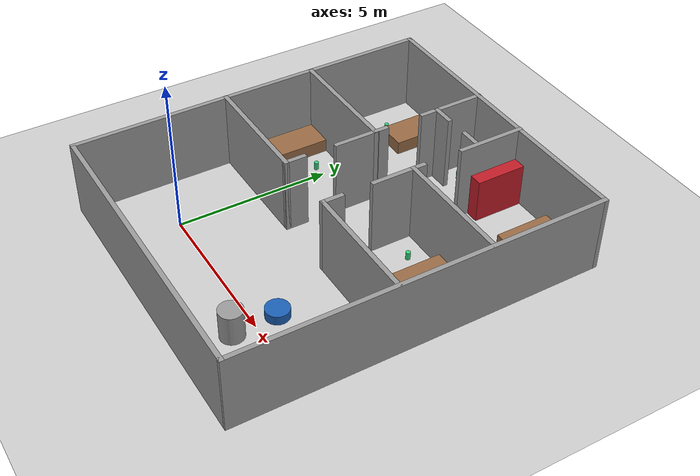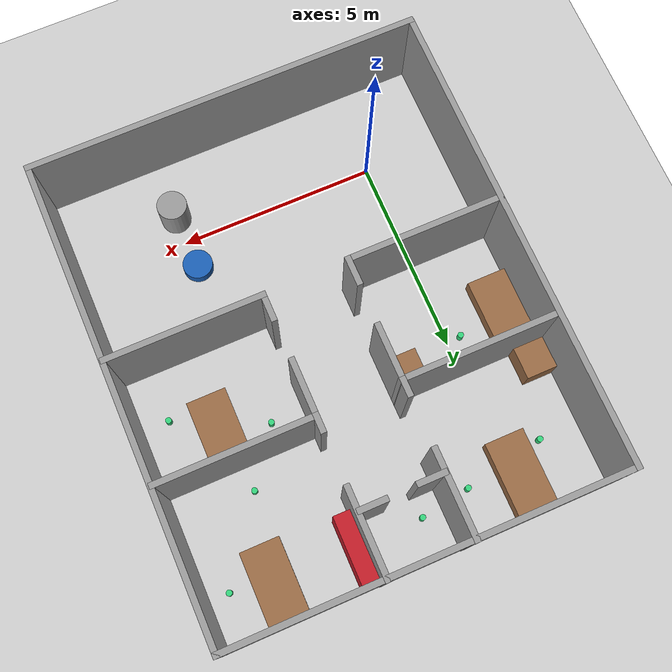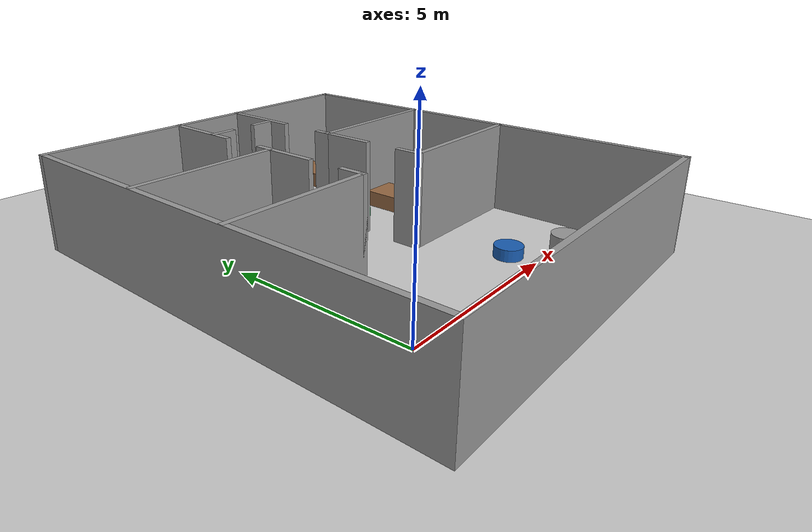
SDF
<sdf version="1.7">
 <world name="default">
  <light name="sun" type="directional">
   <pose>0 0 10 0 -0 0</pose>
   <diffuse>0.8 0.8 0.8 1</diffuse>
   <specular>0.2 0.2 0.2 1</specular>
   <attenuation>
    <range>1000</range>
    <constant>0.9</constant>
    <linear>0.01</linear>
    <quadratic>0.001</quadratic>
   </attenuation>
   <direction>-0.5 0.1 -0.9</direction>
   <spot><inner_angle>0</inner_angle><outer_angle>0</outer_angle><falloff>0</falloff></spot>
  </light>
  <model name="ground_plane">
   <static>1</static>
   <link name="link">
    <collision name="collision">
     <geometry><plane><normal>0 0 1</normal><size>100 100</size></plane></geometry>
     <surface><friction><ode><mu>100</mu><mu2>50</mu2></ode></friction></surface>
    </collision>
    <visual name="visual">
     <cast_shadows>0</cast_shadows>
     <geometry><plane><normal>0 0 1</normal><size>100 100</size></plane></geometry>
     <material>
      <script><uri>file://media/materials/scripts/gazebo.material</uri><name>Gazebo/Grey</name></script>
     </material>
    </visual>
   </link>
  </model>
  <gravity>0 0 -9.8</gravity>
  <magnetic_field>6e-06 2.3e-05 -4.2e-05</magnetic_field>
  <atmosphere type="adiabatic"/>
  <physics type="ode">
   <max_step_size>0.001</max_step_size>
   <real_time_factor>1</real_time_factor>
   <real_time_update_rate>1000</real_time_update_rate>
  </physics>
  <scene><ambient>0.4 0.4 0.4 1</ambient><background>0.7 0.7 0.7 1</background><shadows>1</shadows></scene>
  <audio><device>default</device></audio>
  <spherical_coordinates>
   <surface_model>EARTH_WGS84</surface_model>
   <latitude_deg>0</latitude_deg>
   <longitude_deg>0</longitude_deg>
   <elevation>0</elevation>
   <heading_deg>0</heading_deg>
  </spherical_coordinates>
  <model name="Untitled">
   <pose>4.12572 3.66792 0 0 -0 0.003554</pose>
   <link name="Wall_0">
    <collision name="Wall_0_Collision">
     <geometry><box><size>10 0.15 2.5</size></box></geometry>
     <pose>0 0 1.25 0 -0 0</pose>
    </collision>
    <visual name="Wall_0_Visual">
     <pose>0 0 1.25 0 -0 0</pose>
     <geometry><box><size>10 0.15 2.5</size></box></geometry>
     <material>
      <script><uri>file://media/materials/scripts/gazebo.material</uri><name>Gazebo/Grey</name></script>
      <ambient>1 1 1 1</ambient>
     </material>
     <meta><layer>0</layer></meta>
    </visual>
    <pose>-1.3075 -5.93156 0 0 -0 3.3e-05</pose>
   </link>
   <link name="Wall_14">
    <collision name="Wall_14_Collision">
     <geometry><box><size>4 0.15 2.5</size></box></geometry>
     <pose>0 0 1.25 0 -0 0</pose>
    </collision>
    <visual name="Wall_14_Visual">
     <pose>0 0 1.25 0 -0 0</pose>
     <geometry><box><size>4 0.15 2.5</size></box></geometry>
     <material>
      <script><uri>file://media/materials/scripts/gazebo.material</uri><name>Gazebo/Grey</name></script>
      <ambient>1 1 1 1</ambient>
     </material>
     <meta><layer>0</layer></meta>
    </visual>
    <pose>1.65589 2.13135 0 0 -0 3.14159</pose>
   </link>
   <link name="Wall_17">
    <collision name="Wall_17_Collision">
     <geometry><box><size>4.00005 0.15 2.5</size></box></geometry>
     <pose>0 0 1.25 0 -0 0</pose>
    </collision>
    <visual name="Wall_17_Visual">
     <pose>0 0 1.25 0 -0 0</pose>
     <geometry><box><size>4.00005 0.15 2.5</size></box></geometry>
     <material>
      <script><uri>file://media/materials/scripts/gazebo.material</uri><name>Gazebo/Grey</name></script>
      <ambient>1 1 1 1</ambient>
     </material>
     <meta><layer>0</layer></meta>
    </visual>
    <pose>-4.27584 2.13172 0 0 -0 0</pose>
   </link>
   <link name="Wall_28">
    <collision name="Wall_28_Collision">
     <geometry><box><size>2.25 0.15 2.5</size></box></geometry>
     <pose>0 0 1.25 0 -0 0</pose>
    </collision>
    <visual name="Wall_28_Visual">
     <pose>0 0 1.25 0 -0 0</pose>
     <geometry><box><size>2.25 0.15 2.5</size></box></geometry>
     <material>
      <script><uri>file://media/materials/scripts/gazebo.material</uri><name>Gazebo/Grey</name></script>
      <ambient>1 1 1 1</ambient>
     </material>
     <meta><layer>0</layer></meta>
    </visual>
    <pose>-2.35084 4.88172 0 0 -0 1.5708</pose>
   </link>
   <link name="Wall_31">
    <collision name="Wall_31_Collision">
     <geometry><box><size>2.25 0.15 2.5</size></box></geometry>
     <pose>0 0 1.25 0 -0 0</pose>
    </collision>
    <visual name="Wall_31_Visual">
     <pose>0 0 1.25 0 -0 0</pose>
     <geometry><box><size>2.25 0.15 2.5</size></box></geometry>
     <material>
      <script><uri>file://media/materials/scripts/gazebo.material</uri><name>Gazebo/Grey</name></script>
      <ambient>1 1 1 1</ambient>
     </material>
     <meta><layer>0</layer></meta>
    </visual>
    <pose>-0.269114 4.88135 0 0 -0 1.5708</pose>
   </link>
   <link name="Wall_33">
    <collision name="Wall_33_Collision">
     <geometry><box><size>0.75 0.15 2.5</size></box></geometry>
     <pose>0 0 1.25 0 -0 0</pose>
    </collision>
    <visual name="Wall_33_Visual">
     <pose>0 0 1.25 0 -0 0</pose>
     <geometry><box><size>0.75 0.15 2.5</size></box></geometry>
     <material>
      <script><uri>file://media/materials/scripts/gazebo.material</uri><name>Gazebo/Grey</name></script>
      <ambient>1 1 1 1</ambient>
     </material>
     <meta><layer>0</layer></meta>
    </visual>
    <pose>-2.03024 4.37324 0 0 -0 0</pose>
   </link>
   <link name="Wall_36">
    <collision name="Wall_36_Collision">
     <geometry><box><size>0.75 0.15 2.5</size></box></geometry>
     <pose>0 0 1.25 0 -0 0</pose>
    </collision>
    <visual name="Wall_36_Visual">
     <pose>0 0 1.25 0 -0 0</pose>
     <geometry><box><size>0.75 0.15 2.5</size></box></geometry>
     <material>
      <script><uri>file://media/materials/scripts/gazebo.material</uri><name>Gazebo/Grey</name></script>
      <ambient>1 1 1 1</ambient>
     </material>
     <meta><layer>0</layer></meta>
    </visual>
    <pose>-0.612674 4.39073 0 0 -0 3.14159</pose>
   </link>
   <link name="Wall_4">
    <collision name="Wall_4_Collision">
     <geometry><box><size>12 0.15 2.5</size></box></geometry>
     <pose>0 0 1.25 0 -0 0</pose>
    </collision>
    <visual name="Wall_4_Visual">
     <pose>0 0 1.25 0 -0 0</pose>
     <geometry><box><size>12 0.15 2.5</size></box></geometry>
     <material>
      <script><uri>file://media/materials/scripts/gazebo.material</uri><name>Gazebo/Grey</name></script>
      <ambient>1 1 1 1</ambient>
     </material>
     <meta><layer>0</layer></meta>
    </visual>
    <pose>-6.2325 -0.006559 0 0 -0 1.57077</pose>
   </link>
   <link name="Wall_40">
    <collision name="Wall_40_Collision">
     <geometry><box><size>4 0.15 2.5</size></box></geometry>
     <pose>0 0 1.25 0 -0 0</pose>
    </collision>
    <visual name="Wall_40_Visual">
     <pose>0 0 1.25 0 -0 0</pose>
     <geometry><box><size>4 0.15 2.5</size></box></geometry>
     <material>
      <script><uri>file://media/materials/scripts/gazebo.material</uri><name>Gazebo/Grey</name></script>
      <ambient>1 1 1 1</ambient>
     </material>
     <meta><layer>0</layer></meta>
    </visual>
    <pose>-4.29477 -0.903426 0 0 -0 0</pose>
   </link>
   <link name="Wall_42">
    <collision name="Wall_42_Collision">
     <geometry><box><size>4 0.15 2.5</size></box></geometry>
     <pose>0 0 1.25 0 -0 0</pose>
    </collision>
    <visual name="Wall_42_Visual">
     <pose>0 0 1.25 0 -0 0</pose>
     <geometry><box><size>4 0.15 2.5</size></box></geometry>
     <material>
      <script><uri>file://media/materials/scripts/gazebo.material</uri><name>Gazebo/Grey</name></script>
      <ambient>1 1 1 1</ambient>
     </material>
     <meta><layer>0</layer></meta>
    </visual>
    <pose>1.66772 -0.885502 0 0 -0 3.14159</pose>
   </link>
   <link name="Wall_49">
    <collision name="Wall_49_Collision">
     <geometry><box><size>1.5 0.15 2.5</size></box></geometry>
     <pose>0 0 1.25 0 -0 0</pose>
    </collision>
    <visual name="Wall_49_Visual">
     <pose>0 0 1.25 0 -0 0</pose>
     <geometry><box><size>1.5 0.15 2.5</size></box></geometry>
     <material>
      <script><uri>file://media/materials/scripts/gazebo.material</uri><name>Gazebo/Grey</name></script>
      <ambient>1 1 1 1</ambient>
     </material>
     <meta><layer>0</layer></meta>
    </visual>
    <pose>-2.35084 1.47683 0 0 -0 -1.5708</pose>
   </link>
   <link name="Wall_51">
    <collision name="Wall_51_Collision">
     <geometry><box><size>1.5 0.15 2.5</size></box></geometry>
     <pose>0 0 1.25 0 -0 0</pose>
    </collision>
    <visual name="Wall_51_Visual">
     <pose>0 0 1.25 0 -0 0</pose>
     <geometry><box><size>1.5 0.15 2.5</size></box></geometry>
     <material>
      <script><uri>file://media/materials/scripts/gazebo.material</uri><name>Gazebo/Grey</name></script>
      <ambient>1 1 1 1</ambient>
     </material>
     <meta><layer>0</layer></meta>
    </visual>
    <pose>-0.269114 1.45635 0 0 -0 -1.5708</pose>
   </link>
   <link name="Wall_53">
    <collision name="Wall_53_Collision">
     <geometry><box><size>0.5 0.15 2.5</size></box></geometry>
     <pose>0 0 1.25 0 -0 0</pose>
    </collision>
    <visual name="Wall_53_Visual">
     <pose>0 0 1.25 0 -0 0</pose>
     <geometry><box><size>0.5 0.15 2.5</size></box></geometry>
     <material>
      <script><uri>file://media/materials/scripts/gazebo.material</uri><name>Gazebo/Grey</name></script>
      <ambient>1 1 1 1</ambient>
     </material>
     <meta><layer>0</layer></meta>
    </visual>
    <pose>-2.35084 2.32683 0 0 -0 1.5708</pose>
   </link>
   <link name="Wall_55">
    <collision name="Wall_55_Collision">
     <geometry><box><size>0.5 0.15 2.5</size></box></geometry>
     <pose>0 0 1.25 0 -0 0</pose>
    </collision>
    <visual name="Wall_55_Visual">
     <pose>0 0 1.25 0 -0 0</pose>
     <geometry><box><size>0.5 0.15 2.5</size></box></geometry>
     <material>
      <script><uri>file://media/materials/scripts/gazebo.material</uri><name>Gazebo/Grey</name></script>
      <ambient>1 1 1 1</ambient>
     </material>
     <meta><layer>0</layer></meta>
    </visual>
    <pose>-0.269114 2.30635 0 0 -0 1.5708</pose>
   </link>
   <link name="Wall_57">
    <collision name="Wall_57_Collision">
     <geometry><box><size>0.75 0.15 2.5</size></box></geometry>
     <pose>0 0 1.25 0 -0 0</pose>
    </collision>
    <visual name="Wall_57_Visual">
     <pose>0 0 1.25 0 -0 0</pose>
     <geometry><box><size>0.75 0.15 2.5</size></box></geometry>
     <material>
      <script><uri>file://media/materials/scripts/gazebo.material</uri><name>Gazebo/Grey</name></script>
      <ambient>1 1 1 1</ambient>
     </material>
     <meta><layer>0</layer></meta>
    </visual>
    <pose>-2.36977 -0.603426 0 0 -0 1.5708</pose>
   </link>
   <link name="Wall_59">
    <collision name="Wall_59_Collision">
     <geometry><box><size>0.75 0.15 2.5</size></box></geometry>
     <pose>0 0 1.25 0 -0 0</pose>
    </collision>
    <visual name="Wall_59_Visual">
     <pose>0 0 1.25 0 -0 0</pose>
     <geometry><box><size>0.75 0.15 2.5</size></box></geometry>
     <material>
      <script><uri>file://media/materials/scripts/gazebo.material</uri><name>Gazebo/Grey</name></script>
      <ambient>1 1 1 1</ambient>
     </material>
     <meta><layer>0</layer></meta>
    </visual>
    <pose>-0.257281 -0.585502 0 0 -0 1.5708</pose>
   </link>
   <link name="Wall_6">
    <collision name="Wall_6_Collision">
     <geometry><box><size>12 0.15 2.5</size></box></geometry>
     <pose>0 0 1.25 0 -0 0</pose>
    </collision>
    <visual name="Wall_6_Visual">
     <pose>0 0 1.25 0 -0 0</pose>
     <geometry><box><size>12 0.15 2.5</size></box></geometry>
     <material>
      <script><uri>file://media/materials/scripts/gazebo.material</uri><name>Gazebo/Grey</name></script>
      <ambient>1 1 1 1</ambient>
     </material>
     <meta><layer>0</layer></meta>
    </visual>
    <pose>3.61766 -0.006398 0 0 -0 1.5708</pose>
   </link>
   <link name="Wall_9">
    <collision name="Wall_9_Collision">
     <geometry><box><size>10.0003 0.15 2.5</size></box></geometry>
     <pose>0 0 1.25 0 -0 0</pose>
    </collision>
    <visual name="Wall_9_Visual">
     <pose>0 0 1.25 0 -0 0</pose>
     <geometry><box><size>10.0003 0.15 2.5</size></box></geometry>
     <material>
      <script><uri>file://media/materials/scripts/gazebo.material</uri><name>Gazebo/Grey</name></script>
      <ambient>1 1 1 1</ambient>
     </material>
     <meta><layer>0</layer></meta>
    </visual>
    <pose>-1.30734 5.9186 0 0 -0 0</pose>
   </link>
   <static>1</static>
  </model>
  <model name="unit_cylinder">
   <pose>4.96851 -0.700253 0.491747 0 -0 0</pose>
   <link name="link">
    <inertial>
     <mass>1</mass>
     <inertia><ixx>0.145833</ixx><ixy>0</ixy><ixz>0</ixz><iyy>0.145833</iyy><iyz>0</iyz><izz>0.125</izz></inertia>
    </inertial>
    <collision name="collision">
     <geometry><cylinder><radius>0.373748</radius><length>0.983494</length></cylinder></geometry>
    </collision>
    <visual name="visual">
     <geometry><cylinder><radius>0.373748</radius><length>0.983494</length></cylinder></geometry>
     <material>
      <script><name>Gazebo/Grey</name><uri>file://media/materials/scripts/gazebo.material</uri></script>
     </material>
    </visual>
   </link>
  </model>
  <model name="lv_lajitong">
   <link name="link">
    <inertial>
     <mass>1</mass>
     <inertia><ixx>0.145833</ixx><ixy>0</ixy><ixz>0</ixz><iyy>0.145833</iyy><iyz>0</iyz><izz>0.125</izz></inertia>
    </inertial>
    <visual name="visual">
     <geometry><cylinder><radius>0.0738659</radius><length>0.256539</length></cylinder></geometry>
     <material>
      <script><name>Gazebo/Grey</name><uri>file://media/materials/scripts/gazebo.material</uri></script>
      <shader type="pixel"><normal_map>__default__</normal_map></shader>
      <ambient>0.2 0.82 0.478 1</ambient>
      <diffuse>0.7 0.7 0.7 1</diffuse>
      <specular>0.01 0.01 0.01 1</specular>
      <emissive>0 0 0 1</emissive>
     </material>
    </visual>
    <collision name="collision">
     <geometry><cylinder><radius>0.073866</radius><length>0.256539</length></cylinder></geometry>
     <surface>
      <friction>
       <ode><mu>1</mu><mu2>1</mu2><fdir1>0 0 0</fdir1><slip1>0</slip1><slip2>0</slip2></ode>
       <torsional>
        <coefficient>1</coefficient>
        <patch_radius>0</patch_radius>
        <surface_radius>0</surface_radius>
        <use_patch_radius>1</use_patch_radius>
        <ode><slip>0</slip></ode>
       </torsional>
      </friction>
      <bounce><restitution_coefficient>0</restitution_coefficient><threshold>1e+06</threshold></bounce>
      <contact>
       <collide_without_contact>0</collide_without_contact>
       <collide_without_contact_bitmask>1</collide_without_contact_bitmask>
       <collide_bitmask>1</collide_bitmask>
       <ode>
        <soft_cfm>0</soft_cfm>
        <soft_erp>0.2</soft_erp>
        <kp>1e+13</kp>
        <kd>1</kd>
        <max_vel>0.01</max_vel>
        <min_depth>0</min_depth>
       </ode>
       <bullet>
        <split_impulse>1</split_impulse>
        <split_impulse_penetration_threshold>-0.01</split_impulse_penetration_threshold>
        <soft_cfm>0</soft_cfm>
        <soft_erp>0.2</soft_erp>
        <kp>1e+13</kp>
        <kd>1</kd>
       </bullet>
      </contact>
     </surface>
    </collision>
   </link>
   <static>0</static>
   <pose>4.74781 5.13418 0.128269 0 -0 0</pose>
  </model>
  <model name="lv_lajitong_clone">
   <link name="link">
    <inertial>
     <mass>1</mass>
     <inertia><ixx>0.145833</ixx><ixy>0</ixy><ixz>0</ixz><iyy>0.145833</iyy><iyz>0</iyz><izz>0.125</izz></inertia>
    </inertial>
    <visual name="visual">
     <geometry><cylinder><radius>0.0738659</radius><length>0.256539</length></cylinder></geometry>
     <material>
      <script><name>Gazebo/Grey</name><uri>file://media/materials/scripts/gazebo.material</uri></script>
      <shader type="pixel"><normal_map>__default__</normal_map></shader>
      <ambient>0.2 0.82 0.478 1</ambient>
      <diffuse>0.7 0.7 0.7 1</diffuse>
      <specular>0.01 0.01 0.01 1</specular>
      <emissive>0 0 0 1</emissive>
     </material>
    </visual>
    <collision name="collision">
     <geometry><cylinder><radius>0.073866</radius><length>0.256539</length></cylinder></geometry>
     <surface>
      <friction>
       <ode><mu>1</mu><mu2>1</mu2><fdir1>0 0 0</fdir1><slip1>0</slip1><slip2>0</slip2></ode>
       <torsional>
        <coefficient>1</coefficient>
        <patch_radius>0</patch_radius>
        <surface_radius>0</surface_radius>
        <use_patch_radius>1</use_patch_radius>
        <ode><slip>0</slip></ode>
       </torsional>
      </friction>
      <bounce><restitution_coefficient>0</restitution_coefficient><threshold>1e+06</threshold></bounce>
      <contact>
       <collide_without_contact>0</collide_without_contact>
       <collide_without_contact_bitmask>1</collide_without_contact_bitmask>
       <collide_bitmask>1</collide_bitmask>
       <ode>
        <soft_cfm>0</soft_cfm>
        <soft_erp>0.2</soft_erp>
        <kp>1e+13</kp>
        <kd>1</kd>
        <max_vel>0.01</max_vel>
        <min_depth>0</min_depth>
       </ode>
       <bullet>
        <split_impulse>1</split_impulse>
        <split_impulse_penetration_threshold>-0.01</split_impulse_penetration_threshold>
        <soft_cfm>0</soft_cfm>
        <soft_erp>0.2</soft_erp>
        <kp>1e+13</kp>
        <kd>1</kd>
       </bullet>
      </contact>
     </surface>
    </collision>
   </link>
   <static>0</static>
   <pose>-0.351928 4.95421 0.128269 0 -0 0</pose>
  </model>
  <model name="lv_lajitong_clone_0">
   <link name="link">
    <inertial>
     <mass>1</mass>
     <inertia><ixx>0.145833</ixx><ixy>0</ixy><ixz>0</ixz><iyy>0.145833</iyy><iyz>0</iyz><izz>0.125</izz></inertia>
    </inertial>
    <visual name="visual">
     <geometry><cylinder><radius>0.0738659</radius><length>0.256539</length></cylinder></geometry>
     <material>
      <script><name>Gazebo/Grey</name><uri>file://media/materials/scripts/gazebo.material</uri></script>
      <shader type="pixel"><normal_map>__default__</normal_map></shader>
      <ambient>0.2 0.82 0.478 1</ambient>
      <diffuse>0.7 0.7 0.7 1</diffuse>
      <specular>0.01 0.01 0.01 1</specular>
      <emissive>0 0 0 1</emissive>
     </material>
    </visual>
    <collision name="collision">
     <geometry><cylinder><radius>0.073866</radius><length>0.256539</length></cylinder></geometry>
     <surface>
      <friction>
       <ode><mu>1</mu><mu2>1</mu2><fdir1>0 0 0</fdir1><slip1>0</slip1><slip2>0</slip2></ode>
       <torsional>
        <coefficient>1</coefficient>
        <patch_radius>0</patch_radius>
        <surface_radius>0</surface_radius>
        <use_patch_radius>1</use_patch_radius>
        <ode><slip>0</slip></ode>
       </torsional>
      </friction>
      <bounce><restitution_coefficient>0</restitution_coefficient><threshold>1e+06</threshold></bounce>
      <contact>
       <collide_without_contact>0</collide_without_contact>
       <collide_without_contact_bitmask>1</collide_without_contact_bitmask>
       <collide_bitmask>1</collide_bitmask>
       <ode>
        <soft_cfm>0</soft_cfm>
        <soft_erp>0.2</soft_erp>
        <kp>1e+13</kp>
        <kd>1</kd>
        <max_vel>0.01</max_vel>
        <min_depth>0</min_depth>
       </ode>
       <bullet>
        <split_impulse>1</split_impulse>
        <split_impulse_penetration_threshold>-0.01</split_impulse_penetration_threshold>
        <soft_cfm>0</soft_cfm>
        <soft_erp>0.2</soft_erp>
        <kp>1e+13</kp>
        <kd>1</kd>
       </bullet>
      </contact>
     </surface>
    </collision>
   </link>
   <static>0</static>
   <pose>7.00367 4.12908 0.128269 0 -0 0</pose>
  </model>
  <model name="lan_canzhaowu1">
   <link name="link">
    <inertial>
     <mass>1</mass>
     <inertia><ixx>0.145833</ixx><ixy>0</ixy><ixz>0</ixz><iyy>0.145833</iyy><iyz>0</iyz><izz>0.125</izz></inertia>
    </inertial>
    <visual name="visual">
     <geometry><cylinder><radius>0.373748</radius><length>0.308137</length></cylinder></geometry>
     <material>
      <script><name>Gazebo/Grey</name><uri>file://media/materials/scripts/gazebo.material</uri></script>
      <shader type="pixel"><normal_map>__default__</normal_map></shader>
      <ambient>0.102 0.373 0.706 1</ambient>
      <diffuse>0.7 0.7 0.7 1</diffuse>
      <specular>0.01 0.01 0.01 1</specular>
      <emissive>0 0 0 1</emissive>
     </material>
    </visual>
    <collision name="collision">
     <geometry><cylinder><radius>0.373748</radius><length>0.308137</length></cylinder></geometry>
     <surface>
      <friction>
       <ode><mu>1</mu><mu2>1</mu2><fdir1>0 0 0</fdir1><slip1>0</slip1><slip2>0</slip2></ode>
       <torsional>
        <coefficient>1</coefficient>
        <patch_radius>0</patch_radius>
        <surface_radius>0</surface_radius>
        <use_patch_radius>1</use_patch_radius>
        <ode><slip>0</slip></ode>
       </torsional>
      </friction>
      <bounce><restitution_coefficient>0</restitution_coefficient><threshold>1e+06</threshold></bounce>
      <contact>
       <collide_without_contact>0</collide_without_contact>
       <collide_without_contact_bitmask>1</collide_without_contact_bitmask>
       <collide_bitmask>1</collide_bitmask>
       <ode>
        <soft_cfm>0</soft_cfm>
        <soft_erp>0.2</soft_erp>
        <kp>1e+13</kp>
        <kd>1</kd>
        <max_vel>0.01</max_vel>
        <min_depth>0</min_depth>
       </ode>
       <bullet>
        <split_impulse>1</split_impulse>
        <split_impulse_penetration_threshold>-0.01</split_impulse_penetration_threshold>
        <soft_cfm>0</soft_cfm>
        <soft_erp>0.2</soft_erp>
        <kp>1e+13</kp>
        <kd>1</kd>
       </bullet>
      </contact>
     </surface>
    </collision>
   </link>
   <static>0</static>
   <pose>4.91793 0.727272 0.154068 0 -0 0</pose>
  </model>
  <model name="zong_chuang">
   <link name="link">
    <inertial>
     <mass>1</mass>
     <inertia>
      <ixx>0.166667</ixx>
      <ixy>0</ixy>
      <ixz>0</ixz>
      <iyy>0.166667</iyy>
      <iyz>0</iyz>
      <izz>0.166667</izz>
     </inertia>
    </inertial>
    <visual name="visual">
     <geometry><box><size>1 1.83631 0.441286</size></box></geometry>
     <material>
      <script><name>Gazebo/Grey</name><uri>file://media/materials/scripts/gazebo.material</uri></script>
      <shader type="pixel"><normal_map>__default__</normal_map></shader>
      <ambient>0.596 0.416 0.267 1</ambient>
      <diffuse>0.7 0.7 0.7 1</diffuse>
      <specular>0.01 0.01 0.01 1</specular>
      <emissive>0 0 0 1</emissive>
     </material>
    </visual>
    <collision name="collision">
     <geometry><box><size>1 1.83631 0.441286</size></box></geometry>
     <surface>
      <friction>
       <ode><mu>1</mu><mu2>1</mu2><fdir1>0 0 0</fdir1><slip1>0</slip1><slip2>0</slip2></ode>
       <torsional>
        <coefficient>1</coefficient>
        <patch_radius>0</patch_radius>
        <surface_radius>0</surface_radius>
        <use_patch_radius>1</use_patch_radius>
        <ode><slip>0</slip></ode>
       </torsional>
      </friction>
      <bounce><restitution_coefficient>0</restitution_coefficient><threshold>1e+06</threshold></bounce>
      <contact>
       <collide_without_contact>0</collide_without_contact>
       <collide_without_contact_bitmask>1</collide_without_contact_bitmask>
       <collide_bitmask>1</collide_bitmask>
       <ode>
        <soft_cfm>0</soft_cfm>
        <soft_erp>0.2</soft_erp>
        <kp>1e+13</kp>
        <kd>1</kd>
        <max_vel>0.01</max_vel>
        <min_depth>0</min_depth>
       </ode>
       <bullet>
        <split_impulse>1</split_impulse>
        <split_impulse_penetration_threshold>-0.01</split_impulse_penetration_threshold>
        <soft_cfm>0</soft_cfm>
        <soft_erp>0.2</soft_erp>
        <kp>1e+13</kp>
        <kd>1</kd>
       </bullet>
      </contact>
     </surface>
    </collision>
   </link>
   <static>0</static>
   <pose>-1.52545 4.7864 0.220643 0 -0 0.003551</pose>
  </model>
  <model name="zong_chuang_clone">
   <link name="link">
    <inertial>
     <mass>1</mass>
     <inertia>
      <ixx>0.166667</ixx>
      <ixy>0</ixy>
      <ixz>0</ixz>
      <iyy>0.166667</iyy>
      <iyz>0</iyz>
      <izz>0.166667</izz>
     </inertia>
    </inertial>
    <visual name="visual">
     <geometry><box><size>1 1.83631 0.441286</size></box></geometry>
     <material>
      <script><name>Gazebo/Grey</name><uri>file://media/materials/scripts/gazebo.material</uri></script>
      <shader type="pixel"><normal_map>__default__</normal_map></shader>
      <ambient>0.596 0.416 0.267 1</ambient>
      <diffuse>0.7 0.7 0.7 1</diffuse>
      <specular>0.01 0.01 0.01 1</specular>
      <emissive>0 0 0 1</emissive>
     </material>
    </visual>
    <collision name="collision">
     <geometry><box><size>1 1.83631 0.441286</size></box></geometry>
     <surface>
      <friction>
       <ode><mu>1</mu><mu2>1</mu2><fdir1>0 0 0</fdir1><slip1>0</slip1><slip2>0</slip2></ode>
       <torsional>
        <coefficient>1</coefficient>
        <patch_radius>0</patch_radius>
        <surface_radius>0</surface_radius>
        <use_patch_radius>1</use_patch_radius>
        <ode><slip>0</slip></ode>
       </torsional>
      </friction>
      <bounce><restitution_coefficient>0</restitution_coefficient><threshold>1e+06</threshold></bounce>
      <contact>
       <collide_without_contact>0</collide_without_contact>
       <collide_without_contact_bitmask>1</collide_without_contact_bitmask>
       <collide_bitmask>1</collide_bitmask>
       <ode>
        <soft_cfm>0</soft_cfm>
        <soft_erp>0.2</soft_erp>
        <kp>1e+13</kp>
        <kd>1</kd>
        <max_vel>0.01</max_vel>
        <min_depth>0</min_depth>
       </ode>
       <bullet>
        <split_impulse>1</split_impulse>
        <split_impulse_penetration_threshold>-0.01</split_impulse_penetration_threshold>
        <soft_cfm>0</soft_cfm>
        <soft_erp>0.2</soft_erp>
        <kp>1e+13</kp>
        <kd>1</kd>
       </bullet>
      </contact>
     </surface>
    </collision>
   </link>
   <static>0</static>
   <pose>5.95631 4.87378 0.220643 0 -0 0.003551</pose>
  </model>
  <model name="zhuozi">
   <link name="link">
    <inertial>
     <mass>1</mass>
     <inertia>
      <ixx>0.166667</ixx>
      <ixy>0</ixy>
      <ixz>0</ixz>
      <iyy>0.166667</iyy>
      <iyz>0</iyz>
      <izz>0.166667</izz>
     </inertia>
    </inertial>
    <visual name="visual">
     <geometry><box><size>0.774311 0.79644 0.712189</size></box></geometry>
     <material>
      <script><name>Gazebo/Grey</name><uri>file://media/materials/scripts/gazebo.material</uri></script>
      <shader type="pixel"><normal_map>__default__</normal_map></shader>
      <ambient>0.596 0.416 0.267 1</ambient>
      <diffuse>0.7 0.7 0.7 1</diffuse>
      <specular>0.01 0.01 0.01 1</specular>
      <emissive>0 0 0 1</emissive>
     </material>
    </visual>
    <collision name="collision">
     <geometry><box><size>0.774311 0.79644 0.712189</size></box></geometry>
     <surface>
      <friction>
       <ode><mu>1</mu><mu2>1</mu2><fdir1>0 0 0</fdir1><slip1>0</slip1><slip2>0</slip2></ode>
       <torsional>
        <coefficient>1</coefficient>
        <patch_radius>0</patch_radius>
        <surface_radius>0</surface_radius>
        <use_patch_radius>1</use_patch_radius>
        <ode><slip>0</slip></ode>
       </torsional>
      </friction>
      <bounce><restitution_coefficient>0</restitution_coefficient><threshold>1e+06</threshold></bounce>
      <contact>
       <collide_without_contact>0</collide_without_contact>
       <collide_without_contact_bitmask>1</collide_without_contact_bitmask>
       <collide_bitmask>1</collide_bitmask>
       <ode>
        <soft_cfm>0</soft_cfm>
        <soft_erp>0.2</soft_erp>
        <kp>1e+13</kp>
        <kd>1</kd>
        <max_vel>0.01</max_vel>
        <min_depth>0</min_depth>
       </ode>
       <bullet>
        <split_impulse>1</split_impulse>
        <split_impulse_penetration_threshold>-0.01</split_impulse_penetration_threshold>
        <soft_cfm>0</soft_cfm>
        <soft_erp>0.2</soft_erp>
        <kp>1e+13</kp>
        <kd>1</kd>
       </bullet>
      </contact>
     </surface>
    </collision>
   </link>
   <static>0</static>
   <pose>1.29217 5.30178 0.356095 0 -0 0.003551</pose>
  </model>
  <model name="lv_lajitong_clone_clone">
   <link name="link">
    <inertial>
     <mass>1</mass>
     <inertia><ixx>0.145833</ixx><ixy>0</ixy><ixz>0</ixz><iyy>0.145833</iyy><iyz>0</iyz><izz>0.125</izz></inertia>
    </inertial>
    <visual name="visual">
     <geometry><cylinder><radius>0.0738659</radius><length>0.256539</length></cylinder></geometry>
     <material>
      <script><name>Gazebo/Grey</name><uri>file://media/materials/scripts/gazebo.material</uri></script>
      <shader type="pixel"><normal_map>__default__</normal_map></shader>
      <ambient>0.2 0.82 0.478 1</ambient>
      <diffuse>0.7 0.7 0.7 1</diffuse>
      <specular>0.01 0.01 0.01 1</specular>
      <emissive>0 0 0 1</emissive>
     </material>
    </visual>
    <collision name="collision">
     <geometry><cylinder><radius>0.073866</radius><length>0.256539</length></cylinder></geometry>
     <surface>
      <friction>
       <ode><mu>1</mu><mu2>1</mu2><fdir1>0 0 0</fdir1><slip1>0</slip1><slip2>0</slip2></ode>
       <torsional>
        <coefficient>1</coefficient>
        <patch_radius>0</patch_radius>
        <surface_radius>0</surface_radius>
        <use_patch_radius>1</use_patch_radius>
        <ode><slip>0</slip></ode>
       </torsional>
      </friction>
      <bounce><restitution_coefficient>0</restitution_coefficient><threshold>1e+06</threshold></bounce>
      <contact>
       <collide_without_contact>0</collide_without_contact>
       <collide_without_contact_bitmask>1</collide_without_contact_bitmask>
       <collide_bitmask>1</collide_bitmask>
       <ode>
        <soft_cfm>0</soft_cfm>
        <soft_erp>0.2</soft_erp>
        <kp>1e+13</kp>
        <kd>1</kd>
        <max_vel>0.01</max_vel>
        <min_depth>0</min_depth>
       </ode>
       <bullet>
        <split_impulse>1</split_impulse>
        <split_impulse_penetration_threshold>-0.01</split_impulse_penetration_threshold>
        <soft_cfm>0</soft_cfm>
        <soft_erp>0.2</soft_erp>
        <kp>1e+13</kp>
        <kd>1</kd>
       </bullet>
      </contact>
     </surface>
    </collision>
   </link>
   <static>0</static>
   <pose>2.34177 8.61743 0.128269 0 -0 0</pose>
  </model>
  <model name="lv_lajitong_clone_clone_0">
   <link name="link">
    <inertial>
     <mass>1</mass>
     <inertia><ixx>0.145833</ixx><ixy>0</ixy><ixz>0</ixz><iyy>0.145833</iyy><iyz>0</iyz><izz>0.125</izz></inertia>
    </inertial>
    <visual name="visual">
     <geometry><cylinder><radius>0.0738659</radius><length>0.256539</length></cylinder></geometry>
     <material>
      <script><name>Gazebo/Grey</name><uri>file://media/materials/scripts/gazebo.material</uri></script>
      <shader type="pixel"><normal_map>__default__</normal_map></shader>
      <ambient>0.2 0.82 0.478 1</ambient>
      <diffuse>0.7 0.7 0.7 1</diffuse>
      <specular>0.01 0.01 0.01 1</specular>
      <emissive>0 0 0 1</emissive>
     </material>
    </visual>
    <collision name="collision">
     <geometry><cylinder><radius>0.073866</radius><length>0.256539</length></cylinder></geometry>
     <surface>
      <friction>
       <ode><mu>1</mu><mu2>1</mu2><fdir1>0 0 0</fdir1><slip1>0</slip1><slip2>0</slip2></ode>
       <torsional>
        <coefficient>1</coefficient>
        <patch_radius>0</patch_radius>
        <surface_radius>0</surface_radius>
        <use_patch_radius>1</use_patch_radius>
        <ode><slip>0</slip></ode>
       </torsional>
      </friction>
      <bounce><restitution_coefficient>0</restitution_coefficient><threshold>1e+06</threshold></bounce>
      <contact>
       <collide_without_contact>0</collide_without_contact>
       <collide_without_contact_bitmask>1</collide_without_contact_bitmask>
       <collide_bitmask>1</collide_bitmask>
       <ode>
        <soft_cfm>0</soft_cfm>
        <soft_erp>0.2</soft_erp>
        <kp>1e+13</kp>
        <kd>1</kd>
        <max_vel>0.01</max_vel>
        <min_depth>0</min_depth>
       </ode>
       <bullet>
        <split_impulse>1</split_impulse>
        <split_impulse_penetration_threshold>-0.01</split_impulse_penetration_threshold>
        <soft_cfm>0</soft_cfm>
        <soft_erp>0.2</soft_erp>
        <kp>1e+13</kp>
        <kd>1</kd>
       </bullet>
      </contact>
     </surface>
    </collision>
   </link>
   <static>0</static>
   <pose>-1.0069 8.02891 0.128269 0 -0 0</pose>
  </model>
  <model name="lv_lajitong_clone_clone_1">
   <link name="link">
    <inertial>
     <mass>1</mass>
     <inertia><ixx>0.145833</ixx><ixy>0</ixy><ixz>0</ixz><iyy>0.145833</iyy><iyz>0</iyz><izz>0.125</izz></inertia>
    </inertial>
    <visual name="visual">
     <geometry><cylinder><radius>0.0738659</radius><length>0.256539</length></cylinder></geometry>
     <material>
      <script><name>Gazebo/Grey</name><uri>file://media/materials/scripts/gazebo.material</uri></script>
      <shader type="pixel"><normal_map>__default__</normal_map></shader>
      <ambient>0.2 0.82 0.478 1</ambient>
      <diffuse>0.7 0.7 0.7 1</diffuse>
      <specular>0.01 0.01 0.01 1</specular>
      <emissive>0 0 0 1</emissive>
     </material>
    </visual>
    <collision name="collision">
     <geometry><cylinder><radius>0.073866</radius><length>0.256539</length></cylinder></geometry>
     <surface>
      <friction>
       <ode><mu>1</mu><mu2>1</mu2><fdir1>0 0 0</fdir1><slip1>0</slip1><slip2>0</slip2></ode>
       <torsional>
        <coefficient>1</coefficient>
        <patch_radius>0</patch_radius>
        <surface_radius>0</surface_radius>
        <use_patch_radius>1</use_patch_radius>
        <ode><slip>0</slip></ode>
       </torsional>
      </friction>
      <bounce><restitution_coefficient>0</restitution_coefficient><threshold>1e+06</threshold></bounce>
      <contact>
       <collide_without_contact>0</collide_without_contact>
       <collide_without_contact_bitmask>1</collide_without_contact_bitmask>
       <collide_bitmask>1</collide_bitmask>
       <ode>
        <soft_cfm>0</soft_cfm>
        <soft_erp>0.2</soft_erp>
        <kp>1e+13</kp>
        <kd>1</kd>
        <max_vel>0.01</max_vel>
        <min_depth>0</min_depth>
       </ode>
       <bullet>
        <split_impulse>1</split_impulse>
        <split_impulse_penetration_threshold>-0.01</split_impulse_penetration_threshold>
        <soft_cfm>0</soft_cfm>
        <soft_erp>0.2</soft_erp>
        <kp>1e+13</kp>
        <kd>1</kd>
       </bullet>
      </contact>
     </surface>
    </collision>
   </link>
   <static>0</static>
   <pose>7.15272 8.43175 0.128269 0 -0 0</pose>
  </model>
  <model name="zong_chuang_clone_0">
   <link name="link">
    <inertial>
     <mass>1</mass>
     <inertia>
      <ixx>0.166667</ixx>
      <ixy>0</ixy>
      <ixz>0</ixz>
      <iyy>0.166667</iyy>
      <iyz>0</iyz>
      <izz>0.166667</izz>
     </inertia>
    </inertial>
    <visual name="visual">
     <geometry><box><size>1 1.83631 0.441286</size></box></geometry>
     <material>
      <script><name>Gazebo/Grey</name><uri>file://media/materials/scripts/gazebo.material</uri></script>
      <shader type="pixel"><normal_map>__default__</normal_map></shader>
      <ambient>0.596 0.416 0.267 1</ambient>
      <diffuse>0.7 0.7 0.7 1</diffuse>
      <specular>0.01 0.01 0.01 1</specular>
      <emissive>0 0 0 1</emissive>
     </material>
    </visual>
    <collision name="collision">
     <geometry><box><size>1 1.83631 0.441286</size></box></geometry>
     <surface>
      <friction>
       <ode><mu>1</mu><mu2>1</mu2><fdir1>0 0 0</fdir1><slip1>0</slip1><slip2>0</slip2></ode>
       <torsional>
        <coefficient>1</coefficient>
        <patch_radius>0</patch_radius>
        <surface_radius>0</surface_radius>
        <use_patch_radius>1</use_patch_radius>
        <ode><slip>0</slip></ode>
       </torsional>
      </friction>
      <bounce><restitution_coefficient>0</restitution_coefficient><threshold>1e+06</threshold></bounce>
      <contact>
       <collide_without_contact>0</collide_without_contact>
       <collide_without_contact_bitmask>1</collide_without_contact_bitmask>
       <collide_bitmask>1</collide_bitmask>
       <ode>
        <soft_cfm>0</soft_cfm>
        <soft_erp>0.2</soft_erp>
        <kp>1e+13</kp>
        <kd>1</kd>
        <max_vel>0.01</max_vel>
        <min_depth>0</min_depth>
       </ode>
       <bullet>
        <split_impulse>1</split_impulse>
        <split_impulse_penetration_threshold>-0.01</split_impulse_penetration_threshold>
        <soft_cfm>0</soft_cfm>
        <soft_erp>0.2</soft_erp>
        <kp>1e+13</kp>
        <kd>1</kd>
       </bullet>
      </contact>
     </surface>
    </collision>
   </link>
   <static>0</static>
   <pose>-0.195498 8.56309 0.220643 0 -0 0.003551</pose>
  </model>
  <model name="lv_lajitong_clone_clone_0_clone">
   <link name="link">
    <inertial>
     <mass>1</mass>
     <inertia><ixx>0.145833</ixx><ixy>0</ixy><ixz>0</ixz><iyy>0.145833</iyy><iyz>0</iyz><izz>0.125</izz></inertia>
    </inertial>
    <visual name="visual">
     <geometry><cylinder><radius>0.0738659</radius><length>0.256539</length></cylinder></geometry>
     <material>
      <script><name>Gazebo/Grey</name><uri>file://media/materials/scripts/gazebo.material</uri></script>
      <shader type="pixel"><normal_map>__default__</normal_map></shader>
      <ambient>0.2 0.82 0.478 1</ambient>
      <diffuse>0.7 0.7 0.7 1</diffuse>
      <specular>0.01 0.01 0.01 1</specular>
      <emissive>0 0 0 1</emissive>
     </material>
    </visual>
    <collision name="collision">
     <geometry><cylinder><radius>0.073866</radius><length>0.256539</length></cylinder></geometry>
     <surface>
      <friction>
       <ode><mu>1</mu><mu2>1</mu2><fdir1>0 0 0</fdir1><slip1>0</slip1><slip2>0</slip2></ode>
       <torsional>
        <coefficient>1</coefficient>
        <patch_radius>0</patch_radius>
        <surface_radius>0</surface_radius>
        <use_patch_radius>1</use_patch_radius>
        <ode><slip>0</slip></ode>
       </torsional>
      </friction>
      <bounce><restitution_coefficient>0</restitution_coefficient><threshold>1e+06</threshold></bounce>
      <contact>
       <collide_without_contact>0</collide_without_contact>
       <collide_without_contact_bitmask>1</collide_without_contact_bitmask>
       <collide_bitmask>1</collide_bitmask>
       <ode>
        <soft_cfm>0</soft_cfm>
        <soft_erp>0.2</soft_erp>
        <kp>1e+13</kp>
        <kd>1</kd>
        <max_vel>0.01</max_vel>
        <min_depth>0</min_depth>
       </ode>
       <bullet>
        <split_impulse>1</split_impulse>
        <split_impulse_penetration_threshold>-0.01</split_impulse_penetration_threshold>
        <soft_cfm>0</soft_cfm>
        <soft_erp>0.2</soft_erp>
        <kp>1e+13</kp>
        <kd>1</kd>
       </bullet>
      </contact>
     </surface>
    </collision>
   </link>
   <static>0</static>
   <pose>1.06614 8.4117 0.128269 0 -0 0</pose>
  </model>
  <model name="lv_lajitong_clone_clone_0_clone_0">
   <link name="link">
    <inertial>
     <mass>1</mass>
     <inertia><ixx>0.145833</ixx><ixy>0</ixy><ixz>0</ixz><iyy>0.145833</iyy><iyz>0</iyz><izz>0.125</izz></inertia>
    </inertial>
    <visual name="visual">
     <geometry><cylinder><radius>0.0738659</radius><length>0.256539</length></cylinder></geometry>
     <material>
      <script><name>Gazebo/Grey</name><uri>file://media/materials/scripts/gazebo.material</uri></script>
      <shader type="pixel"><normal_map>__default__</normal_map></shader>
      <ambient>0.2 0.82 0.478 1</ambient>
      <diffuse>0.7 0.7 0.7 1</diffuse>
      <specular>0.01 0.01 0.01 1</specular>
      <emissive>0 0 0 1</emissive>
     </material>
    </visual>
    <collision name="collision">
     <geometry><cylinder><radius>0.073866</radius><length>0.256539</length></cylinder></geometry>
     <surface>
      <friction>
       <ode><mu>1</mu><mu2>1</mu2><fdir1>0 0 0</fdir1><slip1>0</slip1><slip2>0</slip2></ode>
       <torsional>
        <coefficient>1</coefficient>
        <patch_radius>0</patch_radius>
        <surface_radius>0</surface_radius>
        <use_patch_radius>1</use_patch_radius>
        <ode><slip>0</slip></ode>
       </torsional>
      </friction>
      <bounce><restitution_coefficient>0</restitution_coefficient><threshold>1e+06</threshold></bounce>
      <contact>
       <collide_without_contact>0</collide_without_contact>
       <collide_without_contact_bitmask>1</collide_without_contact_bitmask>
       <collide_bitmask>1</collide_bitmask>
       <ode>
        <soft_cfm>0</soft_cfm>
        <soft_erp>0.2</soft_erp>
        <kp>1e+13</kp>
        <kd>1</kd>
        <max_vel>0.01</max_vel>
        <min_depth>0</min_depth>
       </ode>
       <bullet>
        <split_impulse>1</split_impulse>
        <split_impulse_penetration_threshold>-0.01</split_impulse_penetration_threshold>
        <soft_cfm>0</soft_cfm>
        <soft_erp>0.2</soft_erp>
        <kp>1e+13</kp>
        <kd>1</kd>
       </bullet>
      </contact>
     </surface>
    </collision>
   </link>
   <static>0</static>
   <pose>5.73431 6.48778 0.128269 0 -0 0</pose>
  </model>
  <model name="zhuozi_clone">
   <link name="link">
    <inertial>
     <mass>1</mass>
     <inertia>
      <ixx>0.166667</ixx>
      <ixy>0</ixy>
      <ixz>0</ixz>
      <iyy>0.166667</iyy>
      <iyz>0</iyz>
      <izz>0.166667</izz>
     </inertia>
    </inertial>
    <visual name="visual">
     <geometry><box><size>0.774311 0.79644 0.712189</size></box></geometry>
     <material>
      <script><name>Gazebo/Grey</name><uri>file://media/materials/scripts/gazebo.material</uri></script>
      <shader type="pixel"><normal_map>__default__</normal_map></shader>
      <ambient>0.596 0.416 0.267 1</ambient>
      <diffuse>0.7 0.7 0.7 1</diffuse>
      <specular>0.01 0.01 0.01 1</specular>
      <emissive>0 0 0 1</emissive>
     </material>
    </visual>
    <collision name="collision">
     <geometry><box><size>0.774311 0.79644 0.712189</size></box></geometry>
     <surface>
      <friction>
       <ode><mu>1</mu><mu2>1</mu2><fdir1>0 0 0</fdir1><slip1>0</slip1><slip2>0</slip2></ode>
       <torsional>
        <coefficient>1</coefficient>
        <patch_radius>0</patch_radius>
        <surface_radius>0</surface_radius>
        <use_patch_radius>1</use_patch_radius>
        <ode><slip>0</slip></ode>
       </torsional>
      </friction>
      <bounce><restitution_coefficient>0</restitution_coefficient><threshold>1e+06</threshold></bounce>
      <contact>
       <collide_without_contact>0</collide_without_contact>
       <collide_without_contact_bitmask>1</collide_without_contact_bitmask>
       <collide_bitmask>1</collide_bitmask>
       <ode>
        <soft_cfm>0</soft_cfm>
        <soft_erp>0.2</soft_erp>
        <kp>1e+13</kp>
        <kd>1</kd>
        <max_vel>0.01</max_vel>
        <min_depth>0</min_depth>
       </ode>
       <bullet>
        <split_impulse>1</split_impulse>
        <split_impulse_penetration_threshold>-0.01</split_impulse_penetration_threshold>
        <soft_cfm>0</soft_cfm>
        <soft_erp>0.2</soft_erp>
        <kp>1e+13</kp>
        <kd>1</kd>
       </bullet>
      </contact>
     </surface>
    </collision>
   </link>
   <static>0</static>
   <pose>-1.64623 6.24679 0.356095 0 -0 0.003551</pose>
  </model>
  <model name="zong_chuang_clone_clone">
   <link name="link">
    <inertial>
     <mass>1</mass>
     <inertia>
      <ixx>0.166667</ixx>
      <ixy>0</ixy>
      <ixz>0</ixz>
      <iyy>0.166667</iyy>
      <iyz>0</iyz>
      <izz>0.166667</izz>
     </inertia>
    </inertial>
    <visual name="visual">
     <geometry><box><size>1 1.83631 0.441286</size></box></geometry>
     <material>
      <script><name>Gazebo/Grey</name><uri>file://media/materials/scripts/gazebo.material</uri></script>
      <shader type="pixel"><normal_map>__default__</normal_map></shader>
      <ambient>0.596 0.416 0.267 1</ambient>
      <diffuse>0.7 0.7 0.7 1</diffuse>
      <specular>0.01 0.01 0.01 1</specular>
      <emissive>0 0 0 1</emissive>
     </material>
    </visual>
    <collision name="collision">
     <geometry><box><size>1 1.83631 0.441286</size></box></geometry>
     <surface>
      <friction>
       <ode><mu>1</mu><mu2>1</mu2><fdir1>0 0 0</fdir1><slip1>0</slip1><slip2>0</slip2></ode>
       <torsional>
        <coefficient>1</coefficient>
        <patch_radius>0</patch_radius>
        <surface_radius>0</surface_radius>
        <use_patch_radius>1</use_patch_radius>
        <ode><slip>0</slip></ode>
       </torsional>
      </friction>
      <bounce><restitution_coefficient>0</restitution_coefficient><threshold>1e+06</threshold></bounce>
      <contact>
       <collide_without_contact>0</collide_without_contact>
       <collide_without_contact_bitmask>1</collide_without_contact_bitmask>
       <collide_bitmask>1</collide_bitmask>
       <ode>
        <soft_cfm>0</soft_cfm>
        <soft_erp>0.2</soft_erp>
        <kp>1e+13</kp>
        <kd>1</kd>
        <max_vel>0.01</max_vel>
        <min_depth>0</min_depth>
       </ode>
       <bullet>
        <split_impulse>1</split_impulse>
        <split_impulse_penetration_threshold>-0.01</split_impulse_penetration_threshold>
        <soft_cfm>0</soft_cfm>
        <soft_erp>0.2</soft_erp>
        <kp>1e+13</kp>
        <kd>1</kd>
       </bullet>
      </contact>
     </surface>
    </collision>
   </link>
   <static>0</static>
   <pose>6.10252 8.62028 0.220643 0 -0 0.003551</pose>
  </model>
  <model name="shuchu">
   <link name="link">
    <inertial>
     <mass>1</mass>
     <inertia>
      <ixx>0.166667</ixx>
      <ixy>0</ixy>
      <ixz>0</ixz>
      <iyy>0.166667</iyy>
      <iyz>0</iyz>
      <izz>0.166667</izz>
     </inertia>
    </inertial>
    <visual name="visual">
     <geometry><box><size>0.446695 1.65344 1.87811</size></box></geometry>
     <material>
      <script><name>Gazebo/Grey</name><uri>file://media/materials/scripts/gazebo.material</uri></script>
      <shader type="pixel"><normal_map>__default__</normal_map></shader>
      <ambient>0.753 0.11 0.157 1</ambient>
      <diffuse>0.7 0.7 0.7 1</diffuse>
      <specular>0.01 0.01 0.01 1</specular>
      <emissive>0 0 0 1</emissive>
     </material>
    </visual>
    <collision name="collision">
     <geometry><box><size>0.446695 1.65344 1.87811</size></box></geometry>
     <surface>
      <friction>
       <ode><mu>1</mu><mu2>1</mu2><fdir1>0 0 0</fdir1><slip1>0</slip1><slip2>0</slip2></ode>
       <torsional>
        <coefficient>1</coefficient>
        <patch_radius>0</patch_radius>
        <surface_radius>0</surface_radius>
        <use_patch_radius>1</use_patch_radius>
        <ode><slip>0</slip></ode>
       </torsional>
      </friction>
      <bounce><restitution_coefficient>0</restitution_coefficient><threshold>1e+06</threshold></bounce>
      <contact>
       <collide_without_contact>0</collide_without_contact>
       <collide_without_contact_bitmask>1</collide_without_contact_bitmask>
       <collide_bitmask>1</collide_bitmask>
       <ode>
        <soft_cfm>0</soft_cfm>
        <soft_erp>0.2</soft_erp>
        <kp>1e+13</kp>
        <kd>1</kd>
        <max_vel>0.01</max_vel>
        <min_depth>0</min_depth>
       </ode>
       <bullet>
        <split_impulse>1</split_impulse>
        <split_impulse_penetration_threshold>-0.01</split_impulse_penetration_threshold>
        <soft_cfm>0</soft_cfm>
        <soft_erp>0.2</soft_erp>
        <kp>1e+13</kp>
        <kd>1</kd>
       </bullet>
      </contact>
     </surface>
    </collision>
   </link>
   <static>0</static>
   <pose>4.11258 8.69031 0.5 0 -0 0</pose>
  </model>
 </world>
</sdf>
